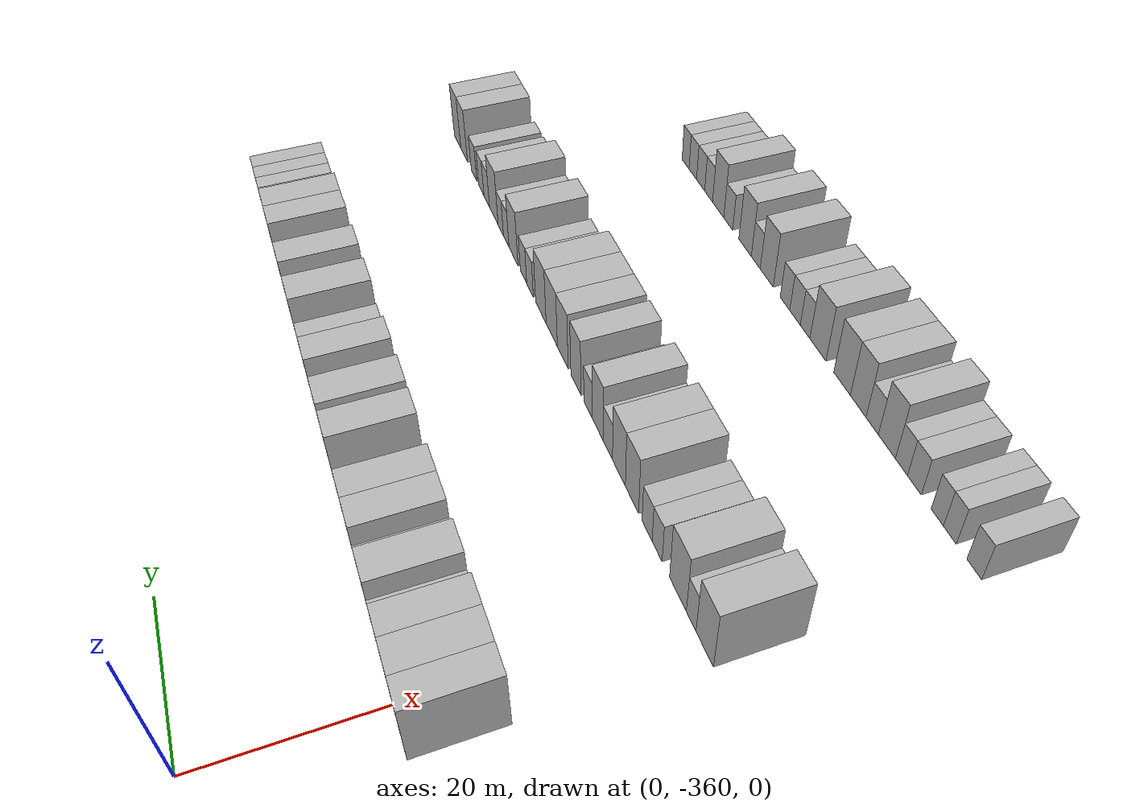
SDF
<sdf version="1.6">
 <world name="default">
  <model name="building_25">
   <static>1</static>
   <pose>25.0000 -363.9805 0 0.000000 0.000000 0.000000</pose>
   <link name="link">
    <pose>0 0 4.50 0 0 0</pose>
    <collision name="collision"><geometry><box><size>10.0000 3.6271 9.0000</size></box></geometry></collision>
    <visual name="visual">
     <cast_shadows>0</cast_shadows>
     <geometry><box><size>10.0000 3.6271 9.0000</size></box></geometry>
     <material>
      <script>
       <uri>model://HANNAS_wall/materials/scripts</uri>
       <uri>model://HANNAS_wall/materials/textures</uri>
       <name>vrc/HANNAS_wall</name>
      </script>
     </material>
    </visual>
   </link>
  </model>
  <model name="building_26">
   <static>1</static>
   <pose>25.0000 -360.1234 0 0.000000 0.000000 0.000000</pose>
   <link name="link">
    <pose>0 0 4.50 0 0 0</pose>
    <collision name="collision"><geometry><box><size>10.0000 4.0871 9.0000</size></box></geometry></collision>
    <visual name="visual">
     <cast_shadows>0</cast_shadows>
     <geometry><box><size>10.0000 4.0871 9.0000</size></box></geometry>
     <material>
      <script>
       <uri>model://HANNAS_wall/materials/scripts</uri>
       <uri>model://HANNAS_wall/materials/textures</uri>
       <name>vrc/HANNAS_wall</name>
      </script>
     </material>
    </visual>
   </link>
  </model>
  <model name="building_27">
   <static>1</static>
   <pose>25.0000 -356.2291 0 0.000000 0.000000 0.000000</pose>
   <link name="link">
    <pose>0 0 4.50 0 0 0</pose>
    <collision name="collision"><geometry><box><size>10.0000 3.7016 9.0000</size></box></geometry></collision>
    <visual name="visual">
     <cast_shadows>0</cast_shadows>
     <geometry><box><size>10.0000 3.7016 9.0000</size></box></geometry>
     <material>
      <script>
       <uri>model://HANNAS_wall/materials/scripts</uri>
       <uri>model://HANNAS_wall/materials/textures</uri>
       <name>vrc/HANNAS_wall</name>
      </script>
     </material>
    </visual>
   </link>
  </model>
  <model name="building_28">
   <static>1</static>
   <pose>25.0000 -353.1717 0 0.000000 0.000000 0.000000</pose>
   <link name="link">
    <pose>0 0 3.00 0 0 0</pose>
    <collision name="collision"><geometry><box><size>10.0000 2.4133 6.0000</size></box></geometry></collision>
    <visual name="visual">
     <cast_shadows>0</cast_shadows>
     <geometry><box><size>10.0000 2.4133 6.0000</size></box></geometry>
     <material>
      <script>
       <uri>model://HANNAS_wall/materials/scripts</uri>
       <uri>model://HANNAS_wall/materials/textures</uri>
       <name>vrc/HANNAS_wall</name>
      </script>
     </material>
    </visual>
   </link>
  </model>
  <model name="building_29">
   <static>1</static>
   <pose>25.0000 -349.8425 0 0.000000 0.000000 0.000000</pose>
   <link name="link">
    <pose>0 0 4.50 0 0 0</pose>
    <collision name="collision"><geometry><box><size>10.0000 4.2451 9.0000</size></box></geometry></collision>
    <visual name="visual">
     <cast_shadows>0</cast_shadows>
     <geometry><box><size>10.0000 4.2451 9.0000</size></box></geometry>
     <material>
      <script>
       <uri>model://HANNAS_wall/materials/scripts</uri>
       <uri>model://HANNAS_wall/materials/textures</uri>
       <name>vrc/HANNAS_wall</name>
      </script>
     </material>
    </visual>
   </link>
  </model>
  <model name="building_30">
   <static>1</static>
   <pose>25.0000 -346.5036 0 0.000000 0.000000 0.000000</pose>
   <link name="link">
    <pose>0 0 3.00 0 0 0</pose>
    <collision name="collision"><geometry><box><size>10.0000 2.4326 6.0000</size></box></geometry></collision>
    <visual name="visual">
     <cast_shadows>0</cast_shadows>
     <geometry><box><size>10.0000 2.4326 6.0000</size></box></geometry>
     <material>
      <script>
       <uri>model://HANNAS_wall/materials/scripts</uri>
       <uri>model://HANNAS_wall/materials/textures</uri>
       <name>vrc/HANNAS_wall</name>
      </script>
     </material>
    </visual>
   </link>
  </model>
  <model name="building_31">
   <static>1</static>
   <pose>25.0000 -343.3185 0 0.000000 0.000000 0.000000</pose>
   <link name="link">
    <pose>0 0 4.50 0 0 0</pose>
    <collision name="collision"><geometry><box><size>10.0000 3.9378 9.0000</size></box></geometry></collision>
    <visual name="visual">
     <cast_shadows>0</cast_shadows>
     <geometry><box><size>10.0000 3.9378 9.0000</size></box></geometry>
     <material>
      <script>
       <uri>model://HANNAS_wall/materials/scripts</uri>
       <uri>model://HANNAS_wall/materials/textures</uri>
       <name>vrc/HANNAS_wall</name>
      </script>
     </material>
    </visual>
   </link>
  </model>
  <model name="building_32">
   <static>1</static>
   <pose>25.0000 -339.4338 0 0.000000 0.000000 0.000000</pose>
   <link name="link">
    <pose>0 0 4.50 0 0 0</pose>
    <collision name="collision"><geometry><box><size>10.0000 3.8315 9.0000</size></box></geometry></collision>
    <visual name="visual">
     <cast_shadows>0</cast_shadows>
     <geometry><box><size>10.0000 3.8315 9.0000</size></box></geometry>
     <material>
      <script>
       <uri>model://HANNAS_wall/materials/scripts</uri>
       <uri>model://HANNAS_wall/materials/textures</uri>
       <name>vrc/HANNAS_wall</name>
      </script>
     </material>
    </visual>
   </link>
  </model>
  <model name="building_33">
   <static>1</static>
   <pose>25.0000 -336.2794 0 0.000000 0.000000 0.000000</pose>
   <link name="link">
    <pose>0 0 3.00 0 0 0</pose>
    <collision name="collision"><geometry><box><size>10.0000 2.4774 6.0000</size></box></geometry></collision>
    <visual name="visual">
     <cast_shadows>0</cast_shadows>
     <geometry><box><size>10.0000 2.4774 6.0000</size></box></geometry>
     <material>
      <script>
       <uri>model://HANNAS_wall/materials/scripts</uri>
       <uri>model://HANNAS_wall/materials/textures</uri>
       <name>vrc/HANNAS_wall</name>
      </script>
     </material>
    </visual>
   </link>
  </model>
  <model name="building_34">
   <static>1</static>
   <pose>25.0000 -331.0184 0 0.000000 0.000000 0.000000</pose>
   <link name="link">
    <pose>0 0 4.50 0 0 0</pose>
    <collision name="collision"><geometry><box><size>10.0000 4.0446 9.0000</size></box></geometry></collision>
    <visual name="visual">
     <cast_shadows>0</cast_shadows>
     <geometry><box><size>10.0000 4.0446 9.0000</size></box></geometry>
     <material>
      <script>
       <uri>model://HANNAS_wall/materials/scripts</uri>
       <uri>model://HANNAS_wall/materials/textures</uri>
       <name>vrc/HANNAS_wall</name>
      </script>
     </material>
    </visual>
   </link>
  </model>
  <model name="building_35">
   <static>1</static>
   <pose>25.0000 -325.8341 0 0.000000 0.000000 0.000000</pose>
   <link name="link">
    <pose>0 0 4.50 0 0 0</pose>
    <collision name="collision"><geometry><box><size>10.0000 4.3239 9.0000</size></box></geometry></collision>
    <visual name="visual">
     <cast_shadows>0</cast_shadows>
     <geometry><box><size>10.0000 4.3239 9.0000</size></box></geometry>
     <material>
      <script>
       <uri>model://HANNAS_wall/materials/scripts</uri>
       <uri>model://HANNAS_wall/materials/textures</uri>
       <name>vrc/HANNAS_wall</name>
      </script>
     </material>
    </visual>
   </link>
  </model>
  <model name="building_36">
   <static>1</static>
   <pose>25.0000 -322.2972 0 0.000000 0.000000 0.000000</pose>
   <link name="link">
    <pose>0 0 3.00 0 0 0</pose>
    <collision name="collision"><geometry><box><size>10.0000 2.7499 6.0000</size></box></geometry></collision>
    <visual name="visual">
     <cast_shadows>0</cast_shadows>
     <geometry><box><size>10.0000 2.7499 6.0000</size></box></geometry>
     <material>
      <script>
       <uri>model://HANNAS_wall/materials/scripts</uri>
       <uri>model://HANNAS_wall/materials/textures</uri>
       <name>vrc/HANNAS_wall</name>
      </script>
     </material>
    </visual>
   </link>
  </model>
  <model name="building_37">
   <static>1</static>
   <pose>25.0000 -318.9817 0 0.000000 0.000000 0.000000</pose>
   <link name="link">
    <pose>0 0 4.50 0 0 0</pose>
    <collision name="collision"><geometry><box><size>10.0000 3.8811 9.0000</size></box></geometry></collision>
    <visual name="visual">
     <cast_shadows>0</cast_shadows>
     <geometry><box><size>10.0000 3.8811 9.0000</size></box></geometry>
     <material>
      <script>
       <uri>model://HANNAS_wall/materials/scripts</uri>
       <uri>model://HANNAS_wall/materials/textures</uri>
       <name>vrc/HANNAS_wall</name>
      </script>
     </material>
    </visual>
   </link>
  </model>
  <model name="building_38">
   <static>1</static>
   <pose>25.0000 -315.6081 0 0.000000 0.000000 0.000000</pose>
   <link name="link">
    <pose>0 0 3.00 0 0 0</pose>
    <collision name="collision"><geometry><box><size>10.0000 2.8661 6.0000</size></box></geometry></collision>
    <visual name="visual">
     <cast_shadows>0</cast_shadows>
     <geometry><box><size>10.0000 2.8661 6.0000</size></box></geometry>
     <material>
      <script>
       <uri>model://HANNAS_wall/materials/scripts</uri>
       <uri>model://HANNAS_wall/materials/textures</uri>
       <name>vrc/HANNAS_wall</name>
      </script>
     </material>
    </visual>
   </link>
  </model>
  <model name="building_39">
   <static>1</static>
   <pose>25.0000 -312.7521 0 0.000000 0.000000 0.000000</pose>
   <link name="link">
    <pose>0 0 3.00 0 0 0</pose>
    <collision name="collision"><geometry><box><size>10.0000 2.8459 6.0000</size></box></geometry></collision>
    <visual name="visual">
     <cast_shadows>0</cast_shadows>
     <geometry><box><size>10.0000 2.8459 6.0000</size></box></geometry>
     <material>
      <script>
       <uri>model://HANNAS_wall/materials/scripts</uri>
       <uri>model://HANNAS_wall/materials/textures</uri>
       <name>vrc/HANNAS_wall</name>
      </script>
     </material>
    </visual>
   </link>
  </model>
  <model name="building_40">
   <static>1</static>
   <pose>25.0000 -308.1326 0 0.000000 0.000000 0.000000</pose>
   <link name="link">
    <pose>0 0 4.50 0 0 0</pose>
    <collision name="collision"><geometry><box><size>10.0000 4.3932 9.0000</size></box></geometry></collision>
    <visual name="visual">
     <cast_shadows>0</cast_shadows>
     <geometry><box><size>10.0000 4.3932 9.0000</size></box></geometry>
     <material>
      <script>
       <uri>model://HANNAS_wall/materials/scripts</uri>
       <uri>model://HANNAS_wall/materials/textures</uri>
       <name>vrc/HANNAS_wall</name>
      </script>
     </material>
    </visual>
   </link>
  </model>
  <model name="building_41">
   <static>1</static>
   <pose>25.0000 -304.5776 0 0.000000 0.000000 0.000000</pose>
   <link name="link">
    <pose>0 0 3.00 0 0 0</pose>
    <collision name="collision"><geometry><box><size>10.0000 2.7168 6.0000</size></box></geometry></collision>
    <visual name="visual">
     <cast_shadows>0</cast_shadows>
     <geometry><box><size>10.0000 2.7168 6.0000</size></box></geometry>
     <material>
      <script>
       <uri>model://HANNAS_wall/materials/scripts</uri>
       <uri>model://HANNAS_wall/materials/textures</uri>
       <name>vrc/HANNAS_wall</name>
      </script>
     </material>
    </visual>
   </link>
  </model>
  <model name="building_42">
   <static>1</static>
   <pose>25.0000 -301.1863 0 0.000000 0.000000 0.000000</pose>
   <link name="link">
    <pose>0 0 4.50 0 0 0</pose>
    <collision name="collision"><geometry><box><size>10.0000 4.0658 9.0000</size></box></geometry></collision>
    <visual name="visual">
     <cast_shadows>0</cast_shadows>
     <geometry><box><size>10.0000 4.0658 9.0000</size></box></geometry>
     <material>
      <script>
       <uri>model://HANNAS_wall/materials/scripts</uri>
       <uri>model://HANNAS_wall/materials/textures</uri>
       <name>vrc/HANNAS_wall</name>
      </script>
     </material>
    </visual>
   </link>
  </model>
  <model name="building_43">
   <static>1</static>
   <pose>25.0000 -297.7364 0 0.000000 0.000000 0.000000</pose>
   <link name="link">
    <pose>0 0 3.00 0 0 0</pose>
    <collision name="collision"><geometry><box><size>10.0000 2.8341 6.0000</size></box></geometry></collision>
    <visual name="visual">
     <cast_shadows>0</cast_shadows>
     <geometry><box><size>10.0000 2.8341 6.0000</size></box></geometry>
     <material>
      <script>
       <uri>model://HANNAS_wall/materials/scripts</uri>
       <uri>model://HANNAS_wall/materials/textures</uri>
       <name>vrc/HANNAS_wall</name>
      </script>
     </material>
    </visual>
   </link>
  </model>
  <model name="building_44">
   <static>1</static>
   <pose>25.0000 -293.3809 0 0.000000 0.000000 0.000000</pose>
   <link name="link">
    <pose>0 0 4.50 0 0 0</pose>
    <collision name="collision"><geometry><box><size>10.0000 3.8769 9.0000</size></box></geometry></collision>
    <visual name="visual">
     <cast_shadows>0</cast_shadows>
     <geometry><box><size>10.0000 3.8769 9.0000</size></box></geometry>
     <material>
      <script>
       <uri>model://HANNAS_wall/materials/scripts</uri>
       <uri>model://HANNAS_wall/materials/textures</uri>
       <name>vrc/HANNAS_wall</name>
      </script>
     </material>
    </visual>
   </link>
  </model>
  <model name="building_45">
   <static>1</static>
   <pose>25.0000 -289.4906 0 0.000000 0.000000 0.000000</pose>
   <link name="link">
    <pose>0 0 4.50 0 0 0</pose>
    <collision name="collision"><geometry><box><size>10.0000 3.9037 9.0000</size></box></geometry></collision>
    <visual name="visual">
     <cast_shadows>0</cast_shadows>
     <geometry><box><size>10.0000 3.9037 9.0000</size></box></geometry>
     <material>
      <script>
       <uri>model://HANNAS_wall/materials/scripts</uri>
       <uri>model://HANNAS_wall/materials/textures</uri>
       <name>vrc/HANNAS_wall</name>
      </script>
     </material>
    </visual>
   </link>
  </model>
  <model name="building_46">
   <static>1</static>
   <pose>25.0000 -284.3265 0 0.000000 0.000000 0.000000</pose>
   <link name="link">
    <pose>0 0 3.00 0 0 0</pose>
    <collision name="collision"><geometry><box><size>10.0000 2.4246 6.0000</size></box></geometry></collision>
    <visual name="visual">
     <cast_shadows>0</cast_shadows>
     <geometry><box><size>10.0000 2.4246 6.0000</size></box></geometry>
     <material>
      <script>
       <uri>model://HANNAS_wall/materials/scripts</uri>
       <uri>model://HANNAS_wall/materials/textures</uri>
       <name>vrc/HANNAS_wall</name>
      </script>
     </material>
    </visual>
   </link>
  </model>
  <model name="building_47">
   <static>1</static>
   <pose>25.0000 -281.9100 0 0.000000 0.000000 0.000000</pose>
   <link name="link">
    <pose>0 0 3.00 0 0 0</pose>
    <collision name="collision"><geometry><box><size>10.0000 2.4084 6.0000</size></box></geometry></collision>
    <visual name="visual">
     <cast_shadows>0</cast_shadows>
     <geometry><box><size>10.0000 2.4084 6.0000</size></box></geometry>
     <material>
      <script>
       <uri>model://HANNAS_wall/materials/scripts</uri>
       <uri>model://HANNAS_wall/materials/textures</uri>
       <name>vrc/HANNAS_wall</name>
      </script>
     </material>
    </visual>
   </link>
  </model>
  <model name="building_48">
   <static>1</static>
   <pose>25.0000 -279.4076 0 0.000000 0.000000 0.000000</pose>
   <link name="link">
    <pose>0 0 3.00 0 0 0</pose>
    <collision name="collision"><geometry><box><size>10.0000 2.5966 6.0000</size></box></geometry></collision>
    <visual name="visual">
     <cast_shadows>0</cast_shadows>
     <geometry><box><size>10.0000 2.5966 6.0000</size></box></geometry>
     <material>
      <script>
       <uri>model://HANNAS_wall/materials/scripts</uri>
       <uri>model://HANNAS_wall/materials/textures</uri>
       <name>vrc/HANNAS_wall</name>
      </script>
     </material>
    </visual>
   </link>
  </model>
  <model name="building_49">
   <static>1</static>
   <pose>25.0000 -276.7826 0 0.000000 0.000000 0.000000</pose>
   <link name="link">
    <pose>0 0 3.00 0 0 0</pose>
    <collision name="collision"><geometry><box><size>10.0000 2.6533 6.0000</size></box></geometry></collision>
    <visual name="visual">
     <cast_shadows>0</cast_shadows>
     <geometry><box><size>10.0000 2.6533 6.0000</size></box></geometry>
     <material>
      <script>
       <uri>model://HANNAS_wall/materials/scripts</uri>
       <uri>model://HANNAS_wall/materials/textures</uri>
       <name>vrc/HANNAS_wall</name>
      </script>
     </material>
    </visual>
   </link>
  </model>
  <model name="building_251">
   <static>1</static>
   <pose>55.0000 -364.8459 0 0.000000 0.000000 0.000000</pose>
   <link name="link">
    <pose>0 0 4.50 0 0 0</pose>
    <collision name="collision"><geometry><box><size>10.0000 4.1797 9.0000</size></box></geometry></collision>
    <visual name="visual">
     <cast_shadows>0</cast_shadows>
     <geometry><box><size>10.0000 4.1797 9.0000</size></box></geometry>
     <material>
      <script>
       <uri>model://HANNAS_wall/materials/scripts</uri>
       <uri>model://HANNAS_wall/materials/textures</uri>
       <name>vrc/HANNAS_wall</name>
      </script>
     </material>
    </visual>
   </link>
  </model>
  <model name="building_252">
   <static>1</static>
   <pose>55.0000 -361.5478 0 0.000000 0.000000 0.000000</pose>
   <link name="link">
    <pose>0 0 3.00 0 0 0</pose>
    <collision name="collision"><geometry><box><size>10.0000 2.4166 6.0000</size></box></geometry></collision>
    <visual name="visual">
     <cast_shadows>0</cast_shadows>
     <geometry><box><size>10.0000 2.4166 6.0000</size></box></geometry>
     <material>
      <script>
       <uri>model://HANNAS_wall/materials/scripts</uri>
       <uri>model://HANNAS_wall/materials/textures</uri>
       <name>vrc/HANNAS_wall</name>
      </script>
     </material>
    </visual>
   </link>
  </model>
  <model name="building_253">
   <static>1</static>
   <pose>55.0000 -358.1696 0 0.000000 0.000000 0.000000</pose>
   <link name="link">
    <pose>0 0 4.50 0 0 0</pose>
    <collision name="collision"><geometry><box><size>10.0000 4.3398 9.0000</size></box></geometry></collision>
    <visual name="visual">
     <cast_shadows>0</cast_shadows>
     <geometry><box><size>10.0000 4.3398 9.0000</size></box></geometry>
     <material>
      <script>
       <uri>model://HANNAS_wall/materials/scripts</uri>
       <uri>model://HANNAS_wall/materials/textures</uri>
       <name>vrc/HANNAS_wall</name>
      </script>
     </material>
    </visual>
   </link>
  </model>
  <model name="building_254">
   <static>1</static>
   <pose>55.0000 -352.6254 0 0.000000 0.000000 0.000000</pose>
   <link name="link">
    <pose>0 0 3.00 0 0 0</pose>
    <collision name="collision"><geometry><box><size>10.0000 2.7485 6.0000</size></box></geometry></collision>
    <visual name="visual">
     <cast_shadows>0</cast_shadows>
     <geometry><box><size>10.0000 2.7485 6.0000</size></box></geometry>
     <material>
      <script>
       <uri>model://HANNAS_wall/materials/scripts</uri>
       <uri>model://HANNAS_wall/materials/textures</uri>
       <name>vrc/HANNAS_wall</name>
      </script>
     </material>
    </visual>
   </link>
  </model>
  <model name="building_255">
   <static>1</static>
   <pose>55.0000 -349.8152 0 0.000000 0.000000 0.000000</pose>
   <link name="link">
    <pose>0 0 3.00 0 0 0</pose>
    <collision name="collision"><geometry><box><size>10.0000 2.8719 6.0000</size></box></geometry></collision>
    <visual name="visual">
     <cast_shadows>0</cast_shadows>
     <geometry><box><size>10.0000 2.8719 6.0000</size></box></geometry>
     <material>
      <script>
       <uri>model://HANNAS_wall/materials/scripts</uri>
       <uri>model://HANNAS_wall/materials/textures</uri>
       <name>vrc/HANNAS_wall</name>
      </script>
     </material>
    </visual>
   </link>
  </model>
  <model name="building_256">
   <static>1</static>
   <pose>55.0000 -345.4102 0 0.000000 0.000000 0.000000</pose>
   <link name="link">
    <pose>0 0 4.50 0 0 0</pose>
    <collision name="collision"><geometry><box><size>10.0000 3.9380 9.0000</size></box></geometry></collision>
    <visual name="visual">
     <cast_shadows>0</cast_shadows>
     <geometry><box><size>10.0000 3.9380 9.0000</size></box></geometry>
     <material>
      <script>
       <uri>model://HANNAS_wall/materials/scripts</uri>
       <uri>model://HANNAS_wall/materials/textures</uri>
       <name>vrc/HANNAS_wall</name>
      </script>
     </material>
    </visual>
   </link>
  </model>
  <model name="building_257">
   <static>1</static>
   <pose>55.0000 -341.4356 0 0.000000 0.000000 0.000000</pose>
   <link name="link">
    <pose>0 0 4.50 0 0 0</pose>
    <collision name="collision"><geometry><box><size>10.0000 4.0114 9.0000</size></box></geometry></collision>
    <visual name="visual">
     <cast_shadows>0</cast_shadows>
     <geometry><box><size>10.0000 4.0114 9.0000</size></box></geometry>
     <material>
      <script>
       <uri>model://HANNAS_wall/materials/scripts</uri>
       <uri>model://HANNAS_wall/materials/textures</uri>
       <name>vrc/HANNAS_wall</name>
      </script>
     </material>
    </visual>
   </link>
  </model>
  <model name="building_258">
   <static>1</static>
   <pose>55.0000 -337.9569 0 0.000000 0.000000 0.000000</pose>
   <link name="link">
    <pose>0 0 3.00 0 0 0</pose>
    <collision name="collision"><geometry><box><size>10.0000 2.9460 6.0000</size></box></geometry></collision>
    <visual name="visual">
     <cast_shadows>0</cast_shadows>
     <geometry><box><size>10.0000 2.9460 6.0000</size></box></geometry>
     <material>
      <script>
       <uri>model://HANNAS_wall/materials/scripts</uri>
       <uri>model://HANNAS_wall/materials/textures</uri>
       <name>vrc/HANNAS_wall</name>
      </script>
     </material>
    </visual>
   </link>
  </model>
  <model name="building_259">
   <static>1</static>
   <pose>55.0000 -334.6384 0 0.000000 0.000000 0.000000</pose>
   <link name="link">
    <pose>0 0 4.50 0 0 0</pose>
    <collision name="collision"><geometry><box><size>10.0000 3.6910 9.0000</size></box></geometry></collision>
    <visual name="visual">
     <cast_shadows>0</cast_shadows>
     <geometry><box><size>10.0000 3.6910 9.0000</size></box></geometry>
     <material>
      <script>
       <uri>model://HANNAS_wall/materials/scripts</uri>
       <uri>model://HANNAS_wall/materials/textures</uri>
       <name>vrc/HANNAS_wall</name>
      </script>
     </material>
    </visual>
   </link>
  </model>
  <model name="building_260">
   <static>1</static>
   <pose>55.0000 -331.3598 0 0.000000 0.000000 0.000000</pose>
   <link name="link">
    <pose>0 0 3.00 0 0 0</pose>
    <collision name="collision"><geometry><box><size>10.0000 2.8662 6.0000</size></box></geometry></collision>
    <visual name="visual">
     <cast_shadows>0</cast_shadows>
     <geometry><box><size>10.0000 2.8662 6.0000</size></box></geometry>
     <material>
      <script>
       <uri>model://HANNAS_wall/materials/scripts</uri>
       <uri>model://HANNAS_wall/materials/textures</uri>
       <name>vrc/HANNAS_wall</name>
      </script>
     </material>
    </visual>
   </link>
  </model>
  <model name="building_261">
   <static>1</static>
   <pose>55.0000 -327.0990 0 0.000000 0.000000 0.000000</pose>
   <link name="link">
    <pose>0 0 4.50 0 0 0</pose>
    <collision name="collision"><geometry><box><size>10.0000 3.6554 9.0000</size></box></geometry></collision>
    <visual name="visual">
     <cast_shadows>0</cast_shadows>
     <geometry><box><size>10.0000 3.6554 9.0000</size></box></geometry>
     <material>
      <script>
       <uri>model://HANNAS_wall/materials/scripts</uri>
       <uri>model://HANNAS_wall/materials/textures</uri>
       <name>vrc/HANNAS_wall</name>
      </script>
     </material>
    </visual>
   </link>
  </model>
  <model name="building_262">
   <static>1</static>
   <pose>55.0000 -322.2507 0 0.000000 0.000000 0.000000</pose>
   <link name="link">
    <pose>0 0 4.50 0 0 0</pose>
    <collision name="collision"><geometry><box><size>10.0000 4.0413 9.0000</size></box></geometry></collision>
    <visual name="visual">
     <cast_shadows>0</cast_shadows>
     <geometry><box><size>10.0000 4.0413 9.0000</size></box></geometry>
     <material>
      <script>
       <uri>model://HANNAS_wall/materials/scripts</uri>
       <uri>model://HANNAS_wall/materials/textures</uri>
       <name>vrc/HANNAS_wall</name>
      </script>
     </material>
    </visual>
   </link>
  </model>
  <model name="building_263">
   <static>1</static>
   <pose>55.0000 -318.0293 0 0.000000 0.000000 0.000000</pose>
   <link name="link">
    <pose>0 0 4.50 0 0 0</pose>
    <collision name="collision"><geometry><box><size>10.0000 4.4015 9.0000</size></box></geometry></collision>
    <visual name="visual">
     <cast_shadows>0</cast_shadows>
     <geometry><box><size>10.0000 4.4015 9.0000</size></box></geometry>
     <material>
      <script>
       <uri>model://HANNAS_wall/materials/scripts</uri>
       <uri>model://HANNAS_wall/materials/textures</uri>
       <name>vrc/HANNAS_wall</name>
      </script>
     </material>
    </visual>
   </link>
  </model>
  <model name="building_264">
   <static>1</static>
   <pose>55.0000 -313.7026 0 0.000000 0.000000 0.000000</pose>
   <link name="link">
    <pose>0 0 4.50 0 0 0</pose>
    <collision name="collision"><geometry><box><size>10.0000 4.2518 9.0000</size></box></geometry></collision>
    <visual name="visual">
     <cast_shadows>0</cast_shadows>
     <geometry><box><size>10.0000 4.2518 9.0000</size></box></geometry>
     <material>
      <script>
       <uri>model://HANNAS_wall/materials/scripts</uri>
       <uri>model://HANNAS_wall/materials/textures</uri>
       <name>vrc/HANNAS_wall</name>
      </script>
     </material>
    </visual>
   </link>
  </model>
  <model name="building_265">
   <static>1</static>
   <pose>55.0000 -309.1768 0 0.000000 0.000000 0.000000</pose>
   <link name="link">
    <pose>0 0 3.00 0 0 0</pose>
    <collision name="collision"><geometry><box><size>10.0000 2.7997 6.0000</size></box></geometry></collision>
    <visual name="visual">
     <cast_shadows>0</cast_shadows>
     <geometry><box><size>10.0000 2.7997 6.0000</size></box></geometry>
     <material>
      <script>
       <uri>model://HANNAS_wall/materials/scripts</uri>
       <uri>model://HANNAS_wall/materials/textures</uri>
       <name>vrc/HANNAS_wall</name>
      </script>
     </material>
    </visual>
   </link>
  </model>
  <model name="building_266">
   <static>1</static>
   <pose>55.0000 -306.3955 0 0.000000 0.000000 0.000000</pose>
   <link name="link">
    <pose>0 0 3.00 0 0 0</pose>
    <collision name="collision"><geometry><box><size>10.0000 2.7629 6.0000</size></box></geometry></collision>
    <visual name="visual">
     <cast_shadows>0</cast_shadows>
     <geometry><box><size>10.0000 2.7629 6.0000</size></box></geometry>
     <material>
      <script>
       <uri>model://HANNAS_wall/materials/scripts</uri>
       <uri>model://HANNAS_wall/materials/textures</uri>
       <name>vrc/HANNAS_wall</name>
      </script>
     </material>
    </visual>
   </link>
  </model>
  <model name="building_267">
   <static>1</static>
   <pose>55.0000 -301.9709 0 0.000000 0.000000 0.000000</pose>
   <link name="link">
    <pose>0 0 4.50 0 0 0</pose>
    <collision name="collision"><geometry><box><size>10.0000 4.0864 9.0000</size></box></geometry></collision>
    <visual name="visual">
     <cast_shadows>0</cast_shadows>
     <geometry><box><size>10.0000 4.0864 9.0000</size></box></geometry>
     <material>
      <script>
       <uri>model://HANNAS_wall/materials/scripts</uri>
       <uri>model://HANNAS_wall/materials/textures</uri>
       <name>vrc/HANNAS_wall</name>
      </script>
     </material>
    </visual>
   </link>
  </model>
  <model name="building_268">
   <static>1</static>
   <pose>55.0000 -298.6383 0 0.000000 0.000000 0.000000</pose>
   <link name="link">
    <pose>0 0 3.00 0 0 0</pose>
    <collision name="collision"><geometry><box><size>10.0000 2.5788 6.0000</size></box></geometry></collision>
    <visual name="visual">
     <cast_shadows>0</cast_shadows>
     <geometry><box><size>10.0000 2.5788 6.0000</size></box></geometry>
     <material>
      <script>
       <uri>model://HANNAS_wall/materials/scripts</uri>
       <uri>model://HANNAS_wall/materials/textures</uri>
       <name>vrc/HANNAS_wall</name>
      </script>
     </material>
    </visual>
   </link>
  </model>
  <model name="building_269">
   <static>1</static>
   <pose>55.0000 -296.0984 0 0.000000 0.000000 0.000000</pose>
   <link name="link">
    <pose>0 0 3.00 0 0 0</pose>
    <collision name="collision"><geometry><box><size>10.0000 2.5010 6.0000</size></box></geometry></collision>
    <visual name="visual">
     <cast_shadows>0</cast_shadows>
     <geometry><box><size>10.0000 2.5010 6.0000</size></box></geometry>
     <material>
      <script>
       <uri>model://HANNAS_wall/materials/scripts</uri>
       <uri>model://HANNAS_wall/materials/textures</uri>
       <name>vrc/HANNAS_wall</name>
      </script>
     </material>
    </visual>
   </link>
  </model>
  <model name="building_270">
   <static>1</static>
   <pose>55.0000 -292.7423 0 0.000000 0.000000 0.000000</pose>
   <link name="link">
    <pose>0 0 4.50 0 0 0</pose>
    <collision name="collision"><geometry><box><size>10.0000 4.2113 9.0000</size></box></geometry></collision>
    <visual name="visual">
     <cast_shadows>0</cast_shadows>
     <geometry><box><size>10.0000 4.2113 9.0000</size></box></geometry>
     <material>
      <script>
       <uri>model://HANNAS_wall/materials/scripts</uri>
       <uri>model://HANNAS_wall/materials/textures</uri>
       <name>vrc/HANNAS_wall</name>
      </script>
     </material>
    </visual>
   </link>
  </model>
  <model name="building_271">
   <static>1</static>
   <pose>55.0000 -289.2334 0 0.000000 0.000000 0.000000</pose>
   <link name="link">
    <pose>0 0 3.00 0 0 0</pose>
    <collision name="collision"><geometry><box><size>10.0000 2.8064 6.0000</size></box></geometry></collision>
    <visual name="visual">
     <cast_shadows>0</cast_shadows>
     <geometry><box><size>10.0000 2.8064 6.0000</size></box></geometry>
     <material>
      <script>
       <uri>model://HANNAS_wall/materials/scripts</uri>
       <uri>model://HANNAS_wall/materials/textures</uri>
       <name>vrc/HANNAS_wall</name>
      </script>
     </material>
    </visual>
   </link>
  </model>
  <model name="building_272">
   <static>1</static>
   <pose>55.0000 -286.4889 0 0.000000 0.000000 0.000000</pose>
   <link name="link">
    <pose>0 0 3.00 0 0 0</pose>
    <collision name="collision"><geometry><box><size>10.0000 2.6826 6.0000</size></box></geometry></collision>
    <visual name="visual">
     <cast_shadows>0</cast_shadows>
     <geometry><box><size>10.0000 2.6826 6.0000</size></box></geometry>
     <material>
      <script>
       <uri>model://HANNAS_wall/materials/scripts</uri>
       <uri>model://HANNAS_wall/materials/textures</uri>
       <name>vrc/HANNAS_wall</name>
      </script>
     </material>
    </visual>
   </link>
  </model>
  <model name="building_273">
   <static>1</static>
   <pose>55.0000 -282.6704 0 0.000000 0.000000 0.000000</pose>
   <link name="link">
    <pose>0 0 3.00 0 0 0</pose>
    <collision name="collision"><geometry><box><size>10.0000 2.9544 6.0000</size></box></geometry></collision>
    <visual name="visual">
     <cast_shadows>0</cast_shadows>
     <geometry><box><size>10.0000 2.9544 6.0000</size></box></geometry>
     <material>
      <script>
       <uri>model://HANNAS_wall/materials/scripts</uri>
       <uri>model://HANNAS_wall/materials/textures</uri>
       <name>vrc/HANNAS_wall</name>
      </script>
     </material>
    </visual>
   </link>
  </model>
  <model name="building_274">
   <static>1</static>
   <pose>55.0000 -277.3484 0 0.000000 0.000000 0.000000</pose>
   <link name="link">
    <pose>0 0 4.50 0 0 0</pose>
    <collision name="collision"><geometry><box><size>10.0000 3.6897 9.0000</size></box></geometry></collision>
    <visual name="visual">
     <cast_shadows>0</cast_shadows>
     <geometry><box><size>10.0000 3.6897 9.0000</size></box></geometry>
     <material>
      <script>
       <uri>model://HANNAS_wall/materials/scripts</uri>
       <uri>model://HANNAS_wall/materials/textures</uri>
       <name>vrc/HANNAS_wall</name>
      </script>
     </material>
    </visual>
   </link>
  </model>
  <model name="building_275">
   <static>1</static>
   <pose>55.0000 -273.6845 0 0.000000 0.000000 0.000000</pose>
   <link name="link">
    <pose>0 0 4.50 0 0 0</pose>
    <collision name="collision"><geometry><box><size>10.0000 3.6381 9.0000</size></box></geometry></collision>
    <visual name="visual">
     <cast_shadows>0</cast_shadows>
     <geometry><box><size>10.0000 3.6381 9.0000</size></box></geometry>
     <material>
      <script>
       <uri>model://HANNAS_wall/materials/scripts</uri>
       <uri>model://HANNAS_wall/materials/textures</uri>
       <name>vrc/HANNAS_wall</name>
      </script>
     </material>
    </visual>
   </link>
  </model>
  <model name="building_478">
   <static>1</static>
   <pose>85.0000 -366.1085 0 0.000000 0.000000 0.000000</pose>
   <link name="link">
    <pose>0 0 3.00 0 0 0</pose>
    <collision name="collision"><geometry><box><size>10.0000 2.7165 6.0000</size></box></geometry></collision>
    <visual name="visual">
     <cast_shadows>0</cast_shadows>
     <geometry><box><size>10.0000 2.7165 6.0000</size></box></geometry>
     <material>
      <script>
       <uri>model://HANNAS_wall/materials/scripts</uri>
       <uri>model://HANNAS_wall/materials/textures</uri>
       <name>vrc/HANNAS_wall</name>
      </script>
     </material>
    </visual>
   </link>
  </model>
  <model name="building_479">
   <static>1</static>
   <pose>85.0000 -361.5093 0 0.000000 0.000000 0.000000</pose>
   <link name="link">
    <pose>0 0 3.00 0 0 0</pose>
    <collision name="collision"><geometry><box><size>10.0000 2.4819 6.0000</size></box></geometry></collision>
    <visual name="visual">
     <cast_shadows>0</cast_shadows>
     <geometry><box><size>10.0000 2.4819 6.0000</size></box></geometry>
     <material>
      <script>
       <uri>model://HANNAS_wall/materials/scripts</uri>
       <uri>model://HANNAS_wall/materials/textures</uri>
       <name>vrc/HANNAS_wall</name>
      </script>
     </material>
    </visual>
   </link>
  </model>
  <model name="building_480">
   <static>1</static>
   <pose>85.0000 -359.0451 0 0.000000 0.000000 0.000000</pose>
   <link name="link">
    <pose>0 0 3.00 0 0 0</pose>
    <collision name="collision"><geometry><box><size>10.0000 2.4464 6.0000</size></box></geometry></collision>
    <visual name="visual">
     <cast_shadows>0</cast_shadows>
     <geometry><box><size>10.0000 2.4464 6.0000</size></box></geometry>
     <material>
      <script>
       <uri>model://HANNAS_wall/materials/scripts</uri>
       <uri>model://HANNAS_wall/materials/textures</uri>
       <name>vrc/HANNAS_wall</name>
      </script>
     </material>
    </visual>
   </link>
  </model>
  <model name="building_481">
   <static>1</static>
   <pose>85.0000 -354.3837 0 0.000000 0.000000 0.000000</pose>
   <link name="link">
    <pose>0 0 3.00 0 0 0</pose>
    <collision name="collision"><geometry><box><size>10.0000 2.8765 6.0000</size></box></geometry></collision>
    <visual name="visual">
     <cast_shadows>0</cast_shadows>
     <geometry><box><size>10.0000 2.8765 6.0000</size></box></geometry>
     <material>
      <script>
       <uri>model://HANNAS_wall/materials/scripts</uri>
       <uri>model://HANNAS_wall/materials/textures</uri>
       <name>vrc/HANNAS_wall</name>
      </script>
     </material>
    </visual>
   </link>
  </model>
  <model name="building_482">
   <static>1</static>
   <pose>85.0000 -351.6501 0 0.000000 0.000000 0.000000</pose>
   <link name="link">
    <pose>0 0 3.00 0 0 0</pose>
    <collision name="collision"><geometry><box><size>10.0000 2.5905 6.0000</size></box></geometry></collision>
    <visual name="visual">
     <cast_shadows>0</cast_shadows>
     <geometry><box><size>10.0000 2.5905 6.0000</size></box></geometry>
     <material>
      <script>
       <uri>model://HANNAS_wall/materials/scripts</uri>
       <uri>model://HANNAS_wall/materials/textures</uri>
       <name>vrc/HANNAS_wall</name>
      </script>
     </material>
    </visual>
   </link>
  </model>
  <model name="building_483">
   <static>1</static>
   <pose>85.0000 -348.4656 0 0.000000 0.000000 0.000000</pose>
   <link name="link">
    <pose>0 0 4.50 0 0 0</pose>
    <collision name="collision"><geometry><box><size>10.0000 3.7785 9.0000</size></box></geometry></collision>
    <visual name="visual">
     <cast_shadows>0</cast_shadows>
     <geometry><box><size>10.0000 3.7785 9.0000</size></box></geometry>
     <material>
      <script>
       <uri>model://HANNAS_wall/materials/scripts</uri>
       <uri>model://HANNAS_wall/materials/textures</uri>
       <name>vrc/HANNAS_wall</name>
      </script>
     </material>
    </visual>
   </link>
  </model>
  <model name="building_484">
   <static>1</static>
   <pose>85.0000 -345.1691 0 0.000000 0.000000 0.000000</pose>
   <link name="link">
    <pose>0 0 3.00 0 0 0</pose>
    <collision name="collision"><geometry><box><size>10.0000 2.8145 6.0000</size></box></geometry></collision>
    <visual name="visual">
     <cast_shadows>0</cast_shadows>
     <geometry><box><size>10.0000 2.8145 6.0000</size></box></geometry>
     <material>
      <script>
       <uri>model://HANNAS_wall/materials/scripts</uri>
       <uri>model://HANNAS_wall/materials/textures</uri>
       <name>vrc/HANNAS_wall</name>
      </script>
     </material>
    </visual>
   </link>
  </model>
  <model name="building_485">
   <static>1</static>
   <pose>85.0000 -341.9021 0 0.000000 0.000000 0.000000</pose>
   <link name="link">
    <pose>0 0 4.50 0 0 0</pose>
    <collision name="collision"><geometry><box><size>10.0000 3.7196 9.0000</size></box></geometry></collision>
    <visual name="visual">
     <cast_shadows>0</cast_shadows>
     <geometry><box><size>10.0000 3.7196 9.0000</size></box></geometry>
     <material>
      <script>
       <uri>model://HANNAS_wall/materials/scripts</uri>
       <uri>model://HANNAS_wall/materials/textures</uri>
       <name>vrc/HANNAS_wall</name>
      </script>
     </material>
    </visual>
   </link>
  </model>
  <model name="building_486">
   <static>1</static>
   <pose>85.0000 -338.0143 0 0.000000 0.000000 0.000000</pose>
   <link name="link">
    <pose>0 0 4.50 0 0 0</pose>
    <collision name="collision"><geometry><box><size>10.0000 4.0560 9.0000</size></box></geometry></collision>
    <visual name="visual">
     <cast_shadows>0</cast_shadows>
     <geometry><box><size>10.0000 4.0560 9.0000</size></box></geometry>
     <material>
      <script>
       <uri>model://HANNAS_wall/materials/scripts</uri>
       <uri>model://HANNAS_wall/materials/textures</uri>
       <name>vrc/HANNAS_wall</name>
      </script>
     </material>
    </visual>
   </link>
  </model>
  <model name="building_487">
   <static>1</static>
   <pose>85.0000 -331.8968 0 0.000000 0.000000 0.000000</pose>
   <link name="link">
    <pose>0 0 4.50 0 0 0</pose>
    <collision name="collision"><geometry><box><size>10.0000 4.1791 9.0000</size></box></geometry></collision>
    <visual name="visual">
     <cast_shadows>0</cast_shadows>
     <geometry><box><size>10.0000 4.1791 9.0000</size></box></geometry>
     <material>
      <script>
       <uri>model://HANNAS_wall/materials/scripts</uri>
       <uri>model://HANNAS_wall/materials/textures</uri>
       <name>vrc/HANNAS_wall</name>
      </script>
     </material>
    </visual>
   </link>
  </model>
  <model name="building_488">
   <static>1</static>
   <pose>85.0000 -328.5106 0 0.000000 0.000000 0.000000</pose>
   <link name="link">
    <pose>0 0 3.00 0 0 0</pose>
    <collision name="collision"><geometry><box><size>10.0000 2.5932 6.0000</size></box></geometry></collision>
    <visual name="visual">
     <cast_shadows>0</cast_shadows>
     <geometry><box><size>10.0000 2.5932 6.0000</size></box></geometry>
     <material>
      <script>
       <uri>model://HANNAS_wall/materials/scripts</uri>
       <uri>model://HANNAS_wall/materials/textures</uri>
       <name>vrc/HANNAS_wall</name>
      </script>
     </material>
    </visual>
   </link>
  </model>
  <model name="building_489">
   <static>1</static>
   <pose>85.0000 -325.7588 0 0.000000 0.000000 0.000000</pose>
   <link name="link">
    <pose>0 0 3.00 0 0 0</pose>
    <collision name="collision"><geometry><box><size>10.0000 2.9104 6.0000</size></box></geometry></collision>
    <visual name="visual">
     <cast_shadows>0</cast_shadows>
     <geometry><box><size>10.0000 2.9104 6.0000</size></box></geometry>
     <material>
      <script>
       <uri>model://HANNAS_wall/materials/scripts</uri>
       <uri>model://HANNAS_wall/materials/textures</uri>
       <name>vrc/HANNAS_wall</name>
      </script>
     </material>
    </visual>
   </link>
  </model>
  <model name="building_490">
   <static>1</static>
   <pose>85.0000 -322.9618 0 0.000000 0.000000 0.000000</pose>
   <link name="link">
    <pose>0 0 3.00 0 0 0</pose>
    <collision name="collision"><geometry><box><size>10.0000 2.6835 6.0000</size></box></geometry></collision>
    <visual name="visual">
     <cast_shadows>0</cast_shadows>
     <geometry><box><size>10.0000 2.6835 6.0000</size></box></geometry>
     <material>
      <script>
       <uri>model://HANNAS_wall/materials/scripts</uri>
       <uri>model://HANNAS_wall/materials/textures</uri>
       <name>vrc/HANNAS_wall</name>
      </script>
     </material>
    </visual>
   </link>
  </model>
  <model name="building_491">
   <static>1</static>
   <pose>85.0000 -317.6735 0 0.000000 0.000000 0.000000</pose>
   <link name="link">
    <pose>0 0 4.50 0 0 0</pose>
    <collision name="collision"><geometry><box><size>10.0000 3.8931 9.0000</size></box></geometry></collision>
    <visual name="visual">
     <cast_shadows>0</cast_shadows>
     <geometry><box><size>10.0000 3.8931 9.0000</size></box></geometry>
     <material>
      <script>
       <uri>model://HANNAS_wall/materials/scripts</uri>
       <uri>model://HANNAS_wall/materials/textures</uri>
       <name>vrc/HANNAS_wall</name>
      </script>
     </material>
    </visual>
   </link>
  </model>
  <model name="building_492">
   <static>1</static>
   <pose>85.0000 -314.3788 0 0.000000 0.000000 0.000000</pose>
   <link name="link">
    <pose>0 0 3.00 0 0 0</pose>
    <collision name="collision"><geometry><box><size>10.0000 2.6964 6.0000</size></box></geometry></collision>
    <visual name="visual">
     <cast_shadows>0</cast_shadows>
     <geometry><box><size>10.0000 2.6964 6.0000</size></box></geometry>
     <material>
      <script>
       <uri>model://HANNAS_wall/materials/scripts</uri>
       <uri>model://HANNAS_wall/materials/textures</uri>
       <name>vrc/HANNAS_wall</name>
      </script>
     </material>
    </visual>
   </link>
  </model>
  <model name="building_493">
   <static>1</static>
   <pose>85.0000 -311.0742 0 0.000000 0.000000 0.000000</pose>
   <link name="link">
    <pose>0 0 4.50 0 0 0</pose>
    <collision name="collision"><geometry><box><size>10.0000 3.9128 9.0000</size></box></geometry></collision>
    <visual name="visual">
     <cast_shadows>0</cast_shadows>
     <geometry><box><size>10.0000 3.9128 9.0000</size></box></geometry>
     <material>
      <script>
       <uri>model://HANNAS_wall/materials/scripts</uri>
       <uri>model://HANNAS_wall/materials/textures</uri>
       <name>vrc/HANNAS_wall</name>
      </script>
     </material>
    </visual>
   </link>
  </model>
  <model name="building_494">
   <static>1</static>
   <pose>85.0000 -305.6671 0 0.000000 0.000000 0.000000</pose>
   <link name="link">
    <pose>0 0 3.00 0 0 0</pose>
    <collision name="collision"><geometry><box><size>10.0000 2.9013 6.0000</size></box></geometry></collision>
    <visual name="visual">
     <cast_shadows>0</cast_shadows>
     <geometry><box><size>10.0000 2.9013 6.0000</size></box></geometry>
     <material>
      <script>
       <uri>model://HANNAS_wall/materials/scripts</uri>
       <uri>model://HANNAS_wall/materials/textures</uri>
       <name>vrc/HANNAS_wall</name>
      </script>
     </material>
    </visual>
   </link>
  </model>
  <model name="building_495">
   <static>1</static>
   <pose>85.0000 -302.3122 0 0.000000 0.000000 0.000000</pose>
   <link name="link">
    <pose>0 0 4.50 0 0 0</pose>
    <collision name="collision"><geometry><box><size>10.0000 3.8084 9.0000</size></box></geometry></collision>
    <visual name="visual">
     <cast_shadows>0</cast_shadows>
     <geometry><box><size>10.0000 3.8084 9.0000</size></box></geometry>
     <material>
      <script>
       <uri>model://HANNAS_wall/materials/scripts</uri>
       <uri>model://HANNAS_wall/materials/textures</uri>
       <name>vrc/HANNAS_wall</name>
      </script>
     </material>
    </visual>
   </link>
  </model>
  <model name="building_496">
   <static>1</static>
   <pose>85.0000 -299.0411 0 0.000000 0.000000 0.000000</pose>
   <link name="link">
    <pose>0 0 3.00 0 0 0</pose>
    <collision name="collision"><geometry><box><size>10.0000 2.7340 6.0000</size></box></geometry></collision>
    <visual name="visual">
     <cast_shadows>0</cast_shadows>
     <geometry><box><size>10.0000 2.7340 6.0000</size></box></geometry>
     <material>
      <script>
       <uri>model://HANNAS_wall/materials/scripts</uri>
       <uri>model://HANNAS_wall/materials/textures</uri>
       <name>vrc/HANNAS_wall</name>
      </script>
     </material>
    </visual>
   </link>
  </model>
  <model name="building_497">
   <static>1</static>
   <pose>85.0000 -296.2407 0 0.000000 0.000000 0.000000</pose>
   <link name="link">
    <pose>0 0 3.00 0 0 0</pose>
    <collision name="collision"><geometry><box><size>10.0000 2.8667 6.0000</size></box></geometry></collision>
    <visual name="visual">
     <cast_shadows>0</cast_shadows>
     <geometry><box><size>10.0000 2.8667 6.0000</size></box></geometry>
     <material>
      <script>
       <uri>model://HANNAS_wall/materials/scripts</uri>
       <uri>model://HANNAS_wall/materials/textures</uri>
       <name>vrc/HANNAS_wall</name>
      </script>
     </material>
    </visual>
   </link>
  </model>
  <model name="building_498">
   <static>1</static>
   <pose>85.0000 -293.4414 0 0.000000 0.000000 0.000000</pose>
   <link name="link">
    <pose>0 0 3.00 0 0 0</pose>
    <collision name="collision"><geometry><box><size>10.0000 2.7319 6.0000</size></box></geometry></collision>
    <visual name="visual">
     <cast_shadows>0</cast_shadows>
     <geometry><box><size>10.0000 2.7319 6.0000</size></box></geometry>
     <material>
      <script>
       <uri>model://HANNAS_wall/materials/scripts</uri>
       <uri>model://HANNAS_wall/materials/textures</uri>
       <name>vrc/HANNAS_wall</name>
      </script>
     </material>
    </visual>
   </link>
  </model>
  <model name="building_499">
   <static>1</static>
   <pose>85.0000 -290.8037 0 0.000000 0.000000 0.000000</pose>
   <link name="link">
    <pose>0 0 3.00 0 0 0</pose>
    <collision name="collision"><geometry><box><size>10.0000 2.5435 6.0000</size></box></geometry></collision>
    <visual name="visual">
     <cast_shadows>0</cast_shadows>
     <geometry><box><size>10.0000 2.5435 6.0000</size></box></geometry>
     <material>
      <script>
       <uri>model://HANNAS_wall/materials/scripts</uri>
       <uri>model://HANNAS_wall/materials/textures</uri>
       <name>vrc/HANNAS_wall</name>
      </script>
     </material>
    </visual>
   </link>
  </model>
 </world>
</sdf>
